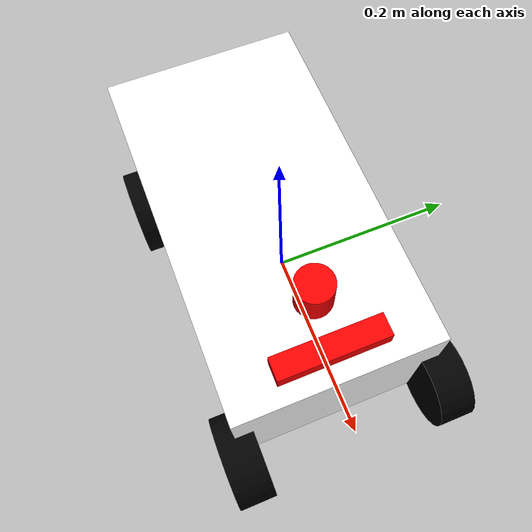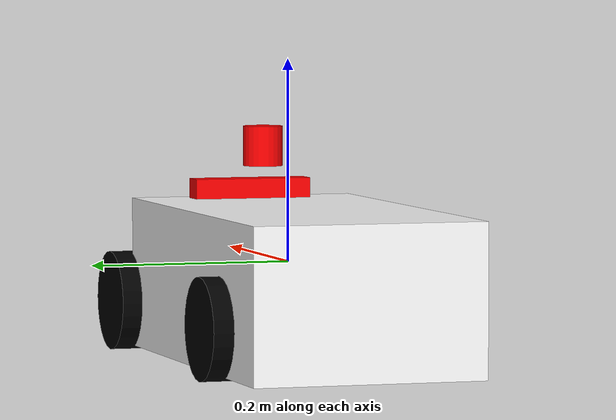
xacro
<?xml version="1.0"?>
<robot xmlns:xacro="http://ros.org/wiki/xacro" name="k3" >

    <!--MACROS-->
    <xacro:include filename="macros.xacro"/>

    <!-- COLOR-->
    <material name = "white">
        <color rgba = "1 1 1 1"/>
    </material>

    <material name = "blue">
        <color rgba = "0 0 1 1"/>
    </material>

    <material name="black">
        <color rgba="0 0 0 1"/>
    </material>

    <material name="red">
        <color rgba="1 0 0 1"/>
    </material>

    <!--BASE LINK-->
    <link name = "base_link">
    </link>

    <!--BODY LINK-->
    <joint name = "body_joint" type = "fixed">
        <parent link = "base_link"/>
        <child link = "body" />
        <origin xyz = "-0.1514 0 -0.05"/>
    </joint>

    <link name = "body">
        <visual>
            <origin xyz = "0.1 0 0.03"/>
            <geometry>
                <box size = "0.425 0.23 0.15"/>
            </geometry>
            <material name = "white"/>
        </visual>
        <collision>
            <origin xyz = "0.1 0 0.03"/>
            <geometry>
                <box size = "0.425 0.23 0.15"/>
            </geometry>
        </collision>
        <xacro:inertial_box mass="3.5" x="0.425" y="0.23" z="0.15">
            <origin xyz="0.1 0 0.03" rpy="0 0 0"/>
        </xacro:inertial_box>
    </link>

    <!-- 앞바퀴용 조향 링크 두 개 추가 -->
    <link name="front_left_steer_link">
        <visual>
            <geometry>
                <box size="0.01 0.01 0.01"/>
            </geometry>
        </visual>
        <collision>
            <geometry>
                <box size="0.01 0.01 0.01"/>
            </geometry>
        </collision>
        <xacro:inertial_box mass="0.02" x="0.01" y="0.01" z="0.01">
            <origin xyz="0 0 0" rpy="0 0 0"/>
        </xacro:inertial_box>
    </link>

    <link name="front_right_steer_link">
        <visual>
            <geometry>
                <box size="0.01 0.01 0.01"/>
            </geometry>
        </visual>
        <collision>
            <geometry>
                <box size="0.01 0.01 0.01"/>
            </geometry>
        </collision>
        <xacro:inertial_box mass="0.02" x="0.01" y="0.01" z="0.01">
            <origin xyz="0 0 0" rpy="0 0 0"/>
        </xacro:inertial_box>
    </link>

    <!-- 앞바퀴 조향 조인트: yaw 축, ±20deg = ±0.349066rad -->
    <joint name="front_left_steer_joint" type="revolute">
        <parent link="base_link"/>
        <child  link="front_left_steer_link"/>
        <origin xyz="0.1736 0.115 -0.05" rpy="0 0 0"/>   <!-- 원래 앞바퀴 위치와 같게 -->
        <axis xyz="0 0 1"/>
        <limit lower="-0.349066" upper="0.349066" effort="30" velocity="2.0"/>
    </joint>

    <joint name="front_right_steer_joint" type="revolute">
        <parent link="base_link"/>
        <child  link="front_right_steer_link"/>
        <origin xyz="0.1736 -0.115 -0.05" rpy="0 0 0"/>
        <axis xyz="0 0 1"/>
        <limit lower="-0.349066" upper="0.349066" effort="30" velocity="2.0"/>
    </joint>

    <!-- FRONT LEFT WHEEL -->
    <xacro:wheel_link name="front_left_wheel" parent_link="front_left_steer_link"
                  xyz="0 0 0" rpy="-${pi/2} 0 0" direction="1"/>

    <gazebo reference = "front_left_wheel">
        <material>Gazebo/Black</material>
    </gazebo>

    <!-- FRONT RIGHT WHEEL -->
    <xacro:wheel_link name="front_right_wheel" parent_link="front_right_steer_link"
                  xyz="0 0 0" rpy="${pi/2} 0 0" direction="-1"/>

    <gazebo reference = "front_right_wheel">
        <material>Gazebo/Black</material>
    </gazebo>

    <!-- REAR LEFT WHEEL -->
    <xacro:wheel_link name="rear_left_wheel" parent_link="base_link"
                  xyz="-0.1514 0.115 -0.05" rpy="-${pi/2} 0 0" direction="1"/>

    <gazebo reference = "rear_left_wheel">
        <material>Gazebo/Black</material>
    </gazebo>

    <!-- REAR RIGHT WHEEL -->
    <xacro:wheel_link name="rear_right_wheel" parent_link="base_link"
                  xyz="-0.1514 -0.115 -0.05" rpy="${pi/2} 0 0" direction="-1"/>

    <gazebo reference = "rear_right_wheel">
        <material>Gazebo/Black</material>
    </gazebo>

    <!-- CASTER WHEEL LINK -->
    <joint name="caster_wheel_joint" type="fixed">
        <parent link="body"/>
        <child link="caster_wheel"/>
        <origin xyz="0.03 0 0"/>
    </joint>

    <link name="caster_wheel">
        <visual>
            <geometry>
                <sphere radius = "0.03"/>
            </geometry>
            <material name = "black"/>
        </visual>
        <collision>
            <geometry>
                <sphere radius = "0.03"/>
            </geometry>
        </collision>
        <xacro:inertial_sphere mass="0.1" radius="0.03">
            <origin xyz="0 0 0" rpy="0 0 0"/>
        </xacro:inertial_sphere>
    </link>

    <gazebo reference = "caster_wheel">
        <material>Gazebo/Blue</material>

        <mu1 value="0.001"/>
        <mu2 value="0.001"/>
    </gazebo>

    <!--LiDAR-->
    <joint name = "laser_joint" type = "fixed">
        <parent link = "base_link"/>
        <child link = "laser"/>
        <origin xyz = "0.0836 0 0.11" rpy="0 0 0"/>
    </joint>

    <link name="laser">
        <visual>
            <geometry>
                <cylinder radius="0.02" length="0.04"/>
            </geometry>
            <material name = "red"/>
        </visual>
        <collision>
            <geometry>
                <cylinder radius="0.02" length="0.04"/>
            </geometry>
        </collision>
    </link>

    <!-- CAMERA -->
    <joint name = "camera_joint" type = "fixed">
        <parent link = "base_link"/>
        <child link = "camera_link"/>
        <origin xyz = "0.1286 0 0.06" rpy="0 0 0"/>
    </joint>

    <link name = "camera_link">
        <visual>
            <geometry>
                <box size = "0.025 0.12 0.03"/>
            </geometry>
            <material name = "red"/>
        </visual>
        <collision>
            <geometry>
                <box size = "0.025 0.12 0.03"/>
            </geometry>
        </collision>
    </link>

    <!-- IMU -->
    <joint name = "imu_joint" type = "fixed">
        <parent link = "base_link"/>
        <child link = "imu_link"/>
        <origin xyz = "-0.1014 0 0.02" rpy = "0 0 0"/>
    </joint>

    <link name = "imu_link">
        <visual>
            <geometry>
                <box size = "0.03 0.03 0.01"/>
            </geometry>
            <material name = "blue"/>
        </visual>
        <collision>
            <geometry>
                <box size = "0.03 0.03 0.01"/>
            </geometry>
        </collision>
    </link>

</robot>

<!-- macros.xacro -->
<robot xmlns:xacro="http://www.ros.org/wiki/xacro" >
    <xacro:macro name = "inertial_sphere" params="mass radius *origin">
        <inertial>
            <xacro:insert_block name="origin"/>
            <mass value="${mass}" />
            <inertia ixx="${(2/5)*mass*(radius*radius)}" ixy="0.0" ixz="0.0"
                    iyy="${(2/5)*mass*(radius*radius)}" iyz = "0.0"
                    izz="${(2/5)*mass*(radius*radius)}" />
        </inertial>
    </xacro:macro>

    <xacro:macro name = "inertial_box" params = "mass x y z *origin">
        <inertial>
            <xacro:insert_block name="origin"/>
            <mass value="${mass}"/>
            <inertia ixx="${(1/12)*mass*(y*y+z*z)}" ixy="0.0" ixz="0.0"
                    iyy="${(1/12)*mass*(x*x+z*z)}" iyz = "0.0"
                    izz="${(1/12)*mass*(x*x+y*y)}" />
        </inertial>
    </xacro:macro>

    <xacro:macro name = "inertial_cylinder" params = "mass length radius *origin">
        <inertial>
            <xacro:insert_block name="origin"/>
            <mass value="${mass}"/>
            <inertia ixx="${(1/12)*mass*(3*radius*radius+length*length)}" ixy="0.0" ixz="0.0"
                    iyy="${(1/12)*mass*(3*radius*radius+length*length)}" iyz = "0.0"
                    izz="${(1/2)*mass*(radius*radius)}" />
        </inertial>
    </xacro:macro>

    <!-- wheel macro -->
    <xacro:macro name="wheel_link" params="name parent_link xyz rpy direction">
        <joint name="${name}_joint" type="continuous">
            <parent link="${parent_link}"/>
            <child link="${name}"/>
            <origin xyz="${xyz}" rpy="0 0 0"/>
            <axis xyz="0 1 0"/>
        </joint>

        <link name="${name}">
            <visual>
                <origin xyz="0 0 0" rpy="${rpy}"/>
                <geometry>
                    <cylinder radius="0.05" length="0.04"/>
                </geometry>
                <material name="black"/>
            </visual>
            <collision>
                <origin xyz="0 0 0" rpy="${rpy}"/>
                <geometry>
                    <cylinder radius="0.05" length="0.04"/>
                </geometry>
            </collision>

            <xacro:inertial_cylinder mass="0.1" length="0.04" radius="0.05">
                <origin xyz="0 0 0" rpy="0 0 0"/>
            </xacro:inertial_cylinder>
        </link>
    </xacro:macro>
</robot>
